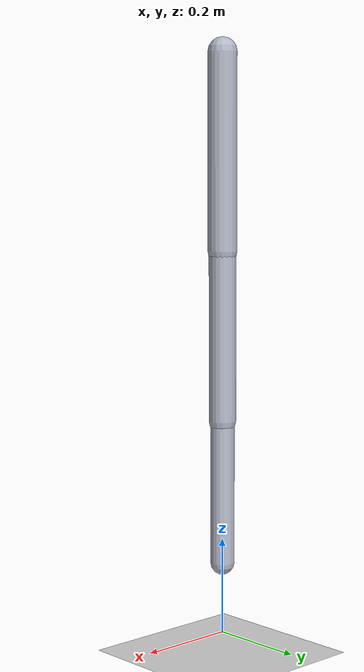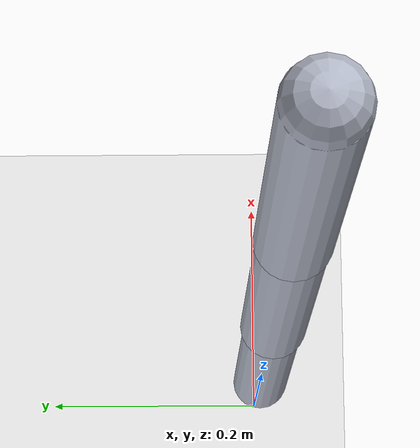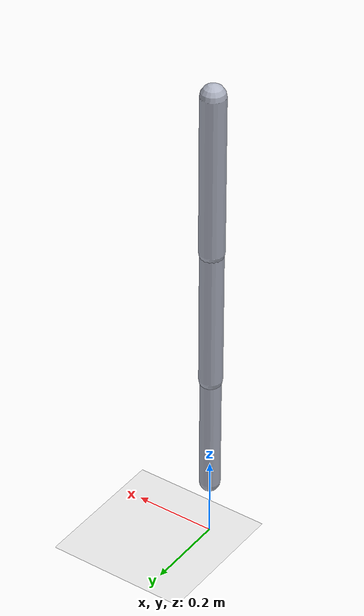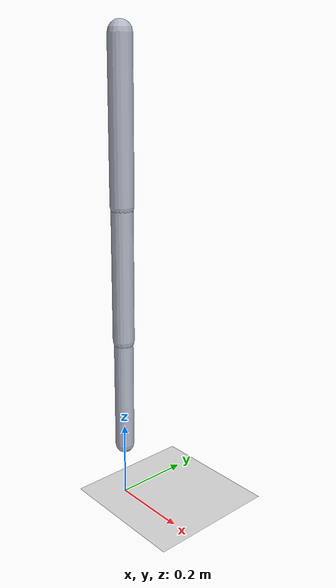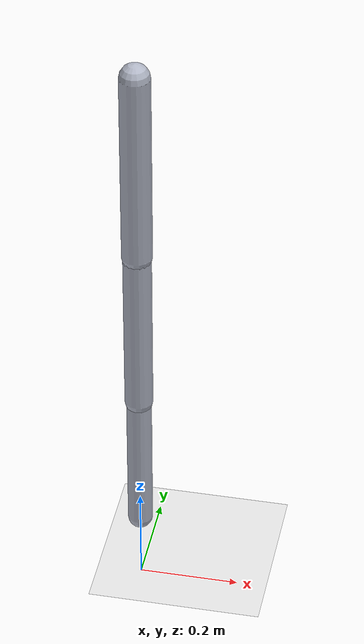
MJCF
<mujoco model="acrobot3">
  <compiler angle="radian"/>
  <option timestep="0.002" integrator="RK4" gravity="0 0 -9.81"/>

  <default>
    <!-- All hinges rotate about +Y so motion is in the X–Z plane -->
    <joint type="hinge" axis="0 1 0" limited="true" range="-2.6 2.6"
           damping="0.25" armature="0.002"/>
    <!-- Rods: capsules with density-based mass/inertia (units kg/m^3) -->
    <geom type="capsule" density="700" friction="0.4 0.01 0.01" rgba="0.70 0.72 0.78 1"/>
    <motor ctrllimited="true" ctrlrange="-6 6" gear="1"/>
  </default>

  <asset>
    <!-- Optional floor material/look -->
  </asset>

  <worldbody>
    <!-- Floor (optional, infinite plane) -->
    <geom name="floor" type="plane" pos="0 0 0" size="5 5 0.1" rgba="0.9 0.9 0.9 1"/>

    <!-- Put the base high enough so rods hang without hitting the floor -->
    <body name="base" pos="0 0 1.2">
      <!-- Link 0 -->
      <body name="link0" pos="0 0 0">
        <joint name="j0"/>
        <!-- Rod pointing DOWN along -Z (length L0 = 0.40, radius r0 = 0.03) -->
        <geom name="g0" fromto="0 0 0   0 0 -0.40" size="0.03"/>
        <!-- COM marker (optional) -->
        <site name="com0" pos="0 0 -0.20" size="0.01" rgba="1 0 0 1"/>

        <!-- Link 1 attaches at the tip of link0 -->
        <body name="link1" pos="0 0 -0.40">
          <joint name="j1"/>
          <geom name="g1" fromto="0 0 0   0 0 -0.35" size="0.028"/>
          <site name="com1" pos="0 0 -0.175" size="0.01" rgba="0 1 0 1"/>

          <!-- Link 2 attaches at the tip of link1 -->
          <body name="link2" pos="0 0 -0.35">
            <joint name="j2"/>
            <geom name="g2" fromto="0 0 0   0 0 -0.30" size="0.025"/>
            <site name="com2" pos="0 0 -0.15" size="0.01" rgba="0 0 1 1"/>
          </body>
        </body>
      </body>
    </body>
  </worldbody>

  <!-- Underactuated: motorize only the distal joints (j1, j2).
       Leave j0 passive (classic acrobot style). -->
  <actuator>
    <motor name="m1" joint="j1"/>
    <motor name="m2" joint="j2"/>
  </actuator>
</mujoco>
